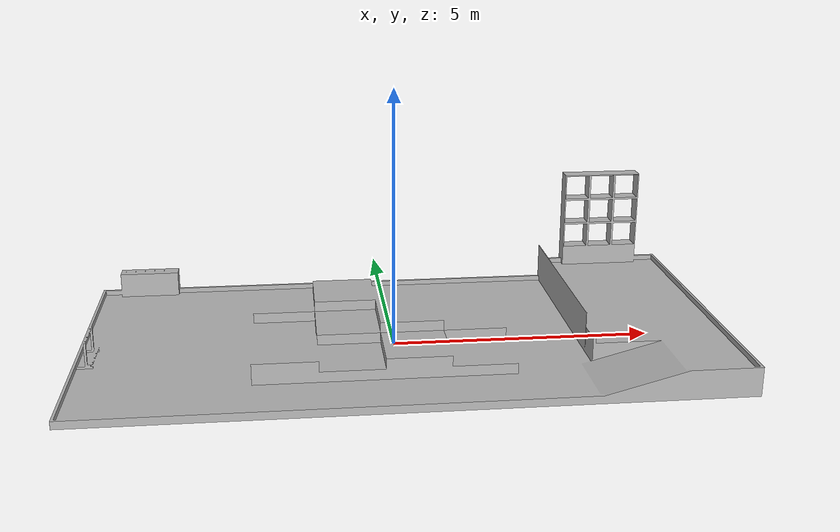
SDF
<sdf version='1.7'>
  <model name='RC26_world'>
    <link name='base-point'>
      <inertial>
        <pose>1.68731 0.272738 0.217971 0 -0 0</pose>
        <mass>16755.6</mass>
        <inertia>
          <ixx>26474</ixx>
          <ixy>2547.08</ixy>
          <ixz>-4.50829</ixz>
          <iyy>18118.5</iyy>
          <iyz>-33.5006</iyz>
          <izz>44268.4</izz>
        </inertia>
      </inertial>
      <collision name='base-point_collision'>
        <pose>0 0 0 0 -0 0</pose>
        <geometry>
          <mesh>
            <scale>1 1 1</scale>
            <uri>model://RC26_world/meshes/base-point.STL</uri>
          </mesh>
        </geometry>
      </collision>
      <visual name='base-point_visual'>
        <pose>0 0 0 0 -0 0</pose>
        <geometry>
          <mesh>
            <scale>1 1 1</scale>
            <uri>model://RC26_world/meshes/base-point.STL</uri>
          </mesh>
        </geometry>
      </visual>
    </link>
  </model>
</sdf>
